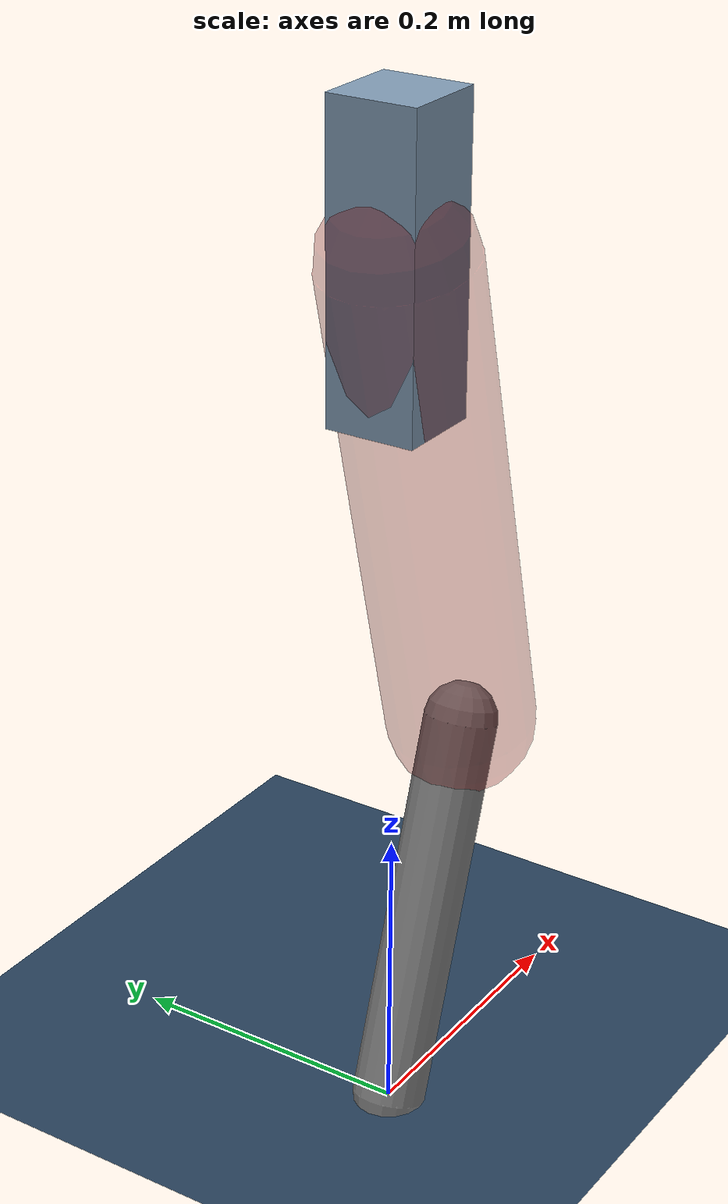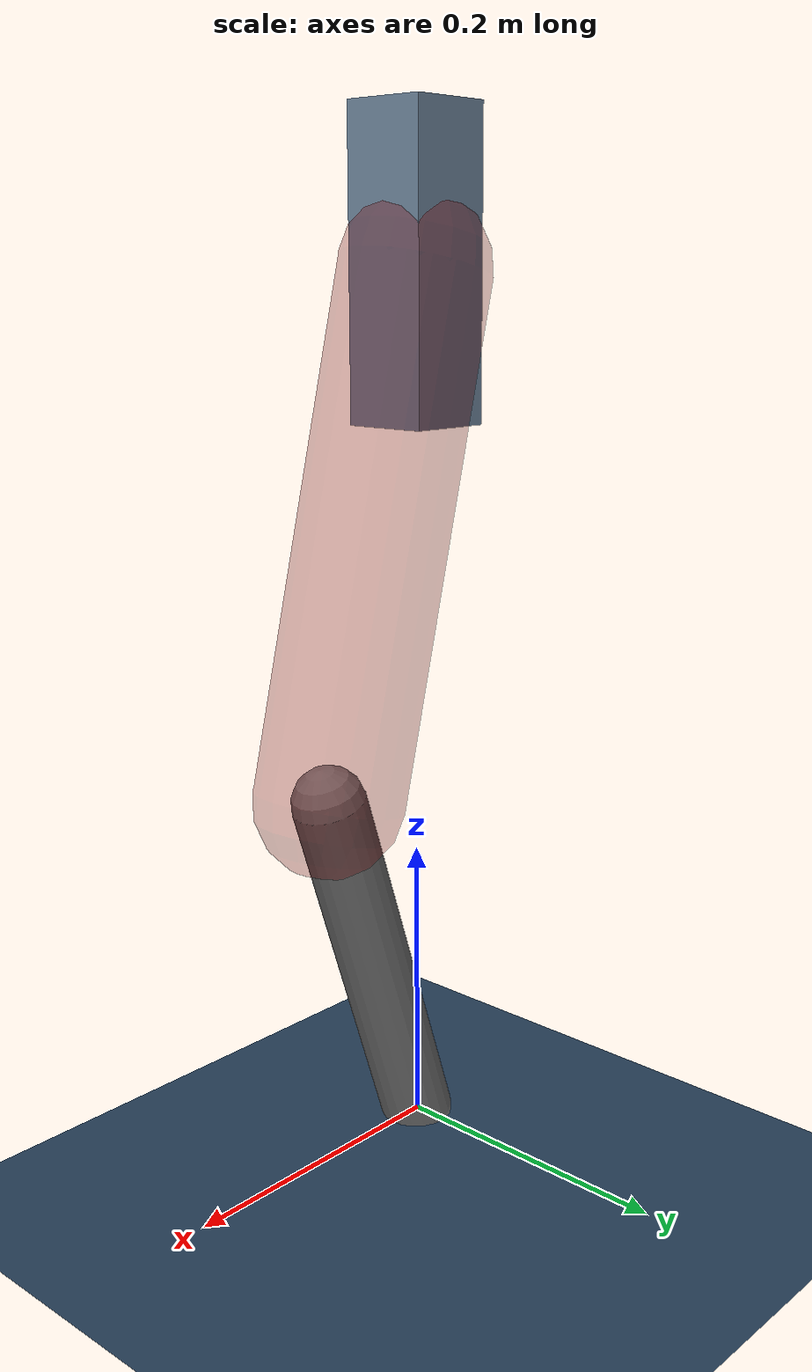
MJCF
<mujoco model="Hopper2D">
	<compiler inertiafromgeom="true" angle="radian" />
	<option timestep="0.001" integrator="implicit" cone="elliptic" solver="Newton" tolerance="1e-10" />

	<default>
		<geom contype="1" conaffinity="1" condim="3" friction="2 0.005 0.0001" solref="0.005 1" />
		<joint limited="true" damping="0.1" />
	</default>

	<asset>
		<texture name="skybox" type="skybox" builtin="gradient" rgb1=".4 .6 .8" rgb2="0 0 0" width="800" height="800" />
		<texture name="grid" type="2d" builtin="checker" rgb1=".1 .2 .3" rgb2=".2 .3 .4" width="300" height="300" mark="edge" markrgb=".2 .3 .4" />
		<material name="ground" texture="grid" texrepeat="1 1" texuniform="true" reflectance="0.1" />
		<material name="leg" rgba="0.5 0.6 0.7 1" />
	</asset>

	<worldbody>

		<geom name="floor" type="plane" size="5 5 0.25" material="ground" />

		<light directional="false" diffuse="0.8 0.8 0.8" specular="0.3 0.3 0.3" pos="0 0 2" dir="0 0 -1" />
		<light mode="targetbodycom" target="base" directional="false" diffuse="0.8 0.8 0.8" specular="0.3 0.3 0.3" pos="0 0 2" dir="0 0 -1" />

		<camera name="fixed" pos="0 -2 1" xyaxes="1 0 0 0 0 1" />
		<camera name="tracking" mode="trackcom" pos="0 -3 1" />

		<body name="root" pos="0 0 0.5918066813963404">
			<joint name="slide_x" type="slide" axis="1 0 0" range="-100 100" />
			<joint name="slide_z" type="slide" axis="0 0 1" range="0 10" />

			<body name="base" pos="0 0 0">
				<geom name="torso" type="box" size="0.03 0.03 0.1" mass="2.7969999999999997" material="leg" />

				<body name="link1" pos="0 0 0" euler="0 1.3260905016169278 0">
					<joint type="hinge" axis="0 -1 0" pos="0 0 0" name="hinge1" limited="true" range="-3.14 3.14" stiffness="0" damping="0.1" />
					<geom name="thigh" type="capsule" fromto="0 0 0 0.3477070615125614 0 0" size="0.05" rgba="0.5 0 0 0.3" mass="1.120279772235172" />

					<body name="link2" pos="0.3477070615125614 0 0" euler="0 0.5644031444618006 0">
						<joint type="hinge" axis="0 -1 0" pos="0 0 0" name="hinge2" limited="true" range="-3.14 3.14" stiffness="0" damping="0.1" />
						<geom name="shank" type="capsule" fromto="0 0 0 0.26803970128792554 0 0" size="0.025" mass="0.4573317610303404" />

					</body>
				</body>
			</body>
		</body>
	</worldbody>

	<actuator>
		<motor name="torque1" joint="hinge1" ctrlrange="-102.03633453189369 102.03633453189369" ctrllimited="true" gear="1" />
		<motor name="torque2" joint="hinge2" ctrlrange="-91.90977240563487 91.90977240563487" ctrllimited="true" gear="1" />
	</actuator>
</mujoco>
